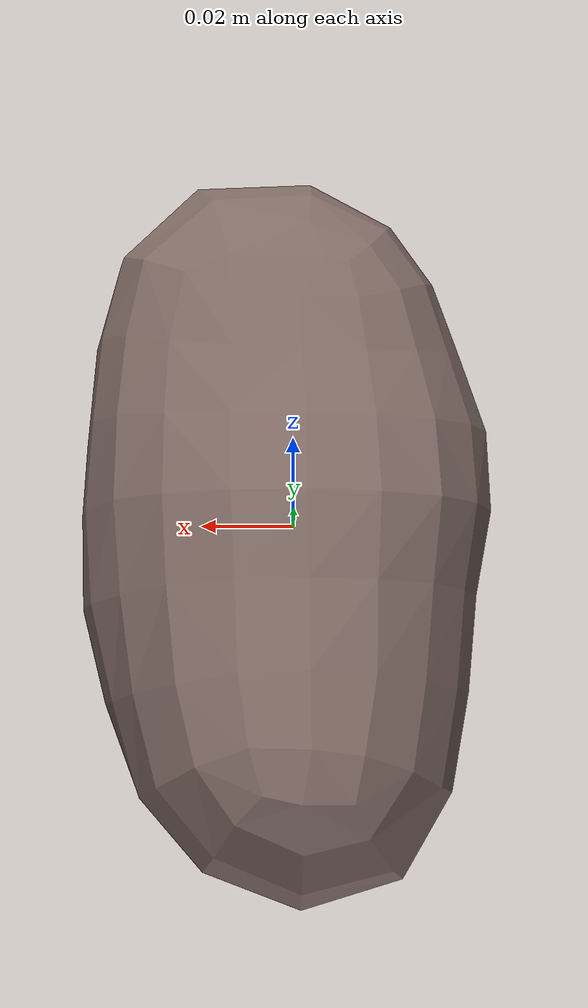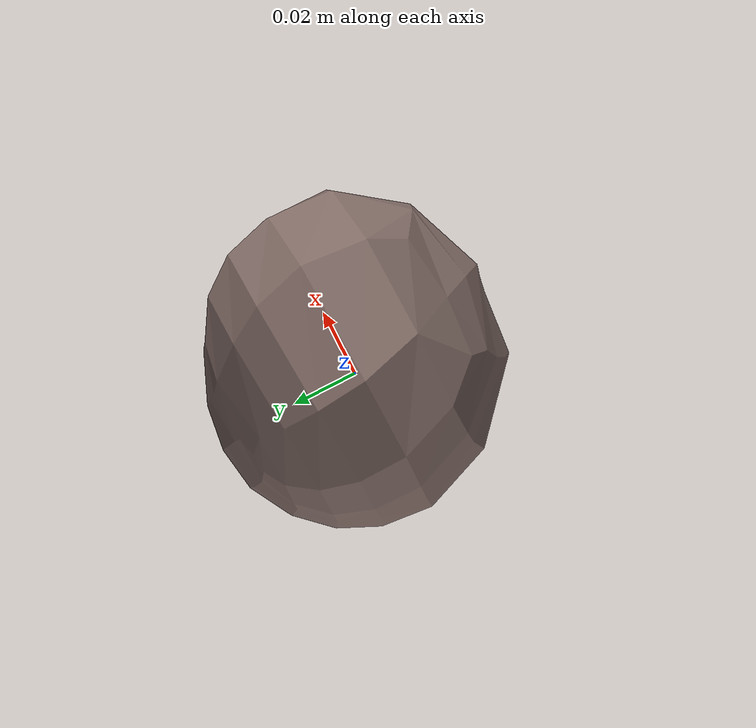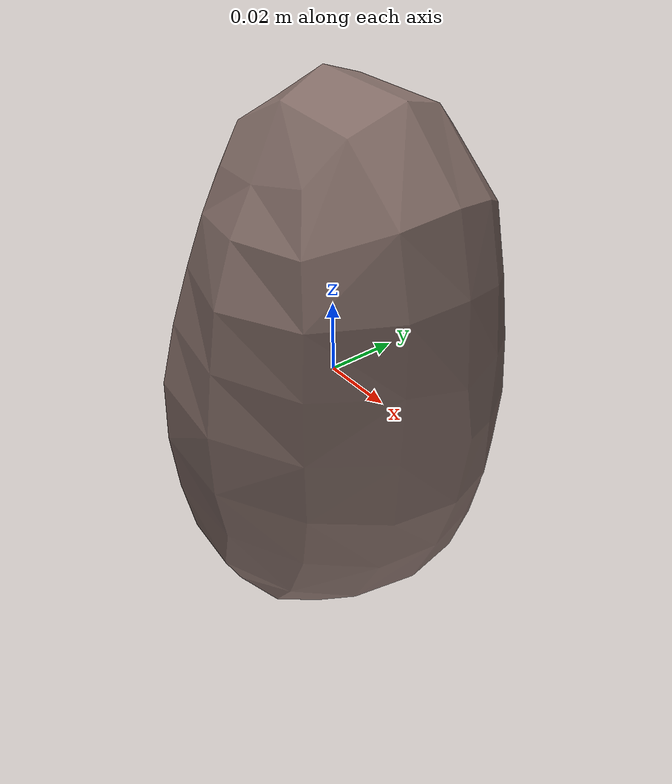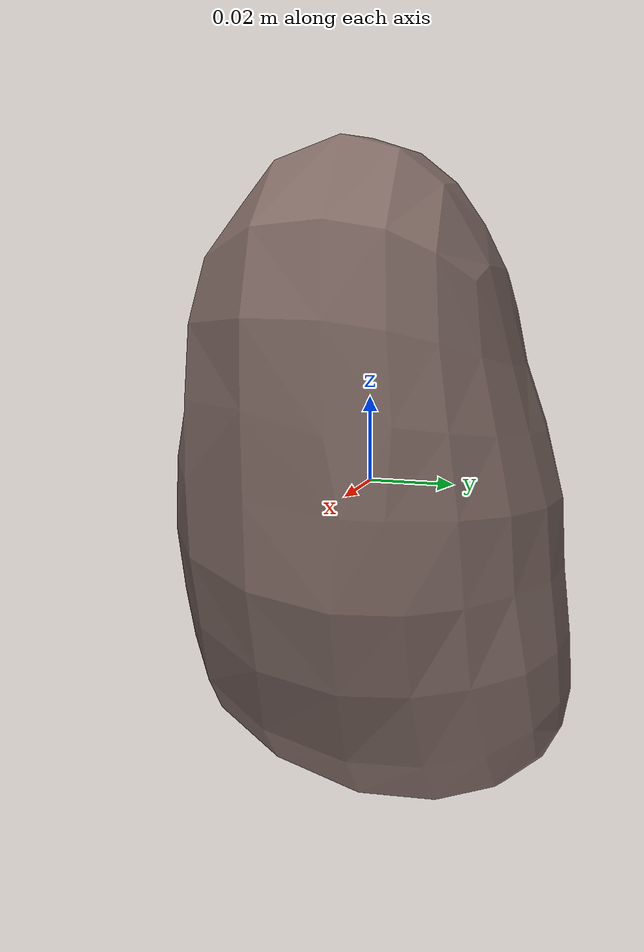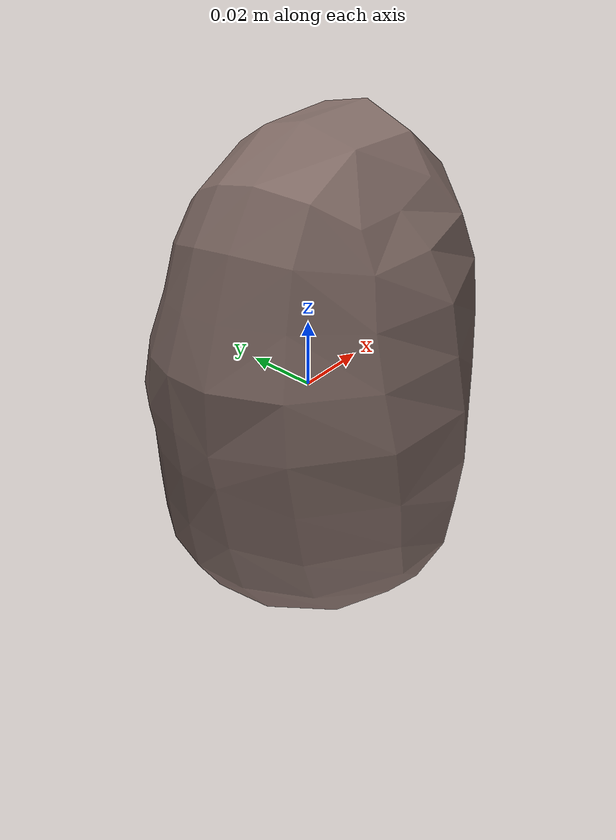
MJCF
<mujoco model="Potato_19">
  <compiler autolimits="true" boundmass="0.01" angle="radian"/>
  <default>
    <default class="/">
      <default class="__VISUAL_MJT__">
        <geom contype="0" conaffinity="0" group="0"/>
      </default>
      <default class="__STRUCTURAL_MJT__">
        <geom contype="8" conaffinity="15" group="4" friction="0.90000000000000002 0.90000000000000002 0.001" solref="0.025000000000000001 1" solimp="0.998 0.998 0.001"/>
      </default>
      <default class="__DYNAMIC_MJT__">
        <geom contype="1" conaffinity="15" group="4" friction="0.90000000000000002 0.90000000000000002 0.001" solref="0.025000000000000001 1" solimp="0.998 0.998 0.001"/>
      </default>
    </default>
  </default>
  <asset>
    <texture name="Potato2_Mat4" type="2d" file="Potato2_AlbedoTransparency.png"/>
    <material name="material_Potato2_Mat4" class="/" texture="Potato2_Mat4" specular="0.5" shininess="0.5" rgba="0.67647060000000003 0.58693770000000001 0.58693770000000001 1"/>
    <mesh name="Potato_19_potato_b9" class="/" file="Potato_19_potato_b9/Potato_19_potato_b9.obj" scale="1 1 1"/>
  </asset>
  <worldbody>
    <body name="Potato_19">
      <joint name="Potato_19_free" class="/" type="free" pos="0 0 0" axis="0 0 1" stiffness="0" range="0 0" armature="0" damping="0.10000000000000001" frictionloss="0"/>
      <body name="Potato_19_potato_b9" pos="0.0015200000000000001 0.0016862396240234375 0.00098574768066406237" quat="0.99804055690765381 -0.062571175396442413 0 0">
        <geom name="Potato_19_potato_b9" class="__VISUAL_MJT__" type="mesh" material="material_Potato2_Mat4" shellinertia="true" mesh="Potato_19_potato_b9"/>
        <geom name="Potato_19_PrimitiveCollider_0" class="__DYNAMIC_MJT__" type="capsule" size="0.043744087219238281 0.033059120178222656" rgba="0 1 0 1" pos="0.0015185177326202393 -0.0016471762210130692 -0.00060826074331998825" quat="1.4751396609986736e-06 0.99999999999891198 0 0"/>
      </body>
    </body>
  </worldbody>
</mujoco>
